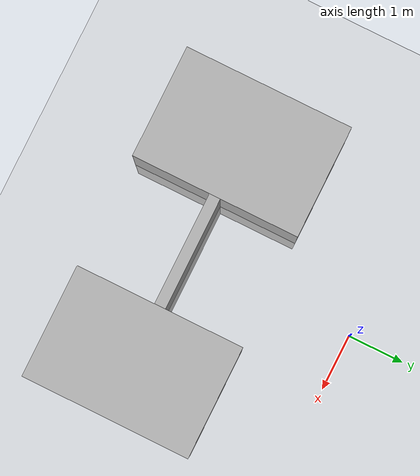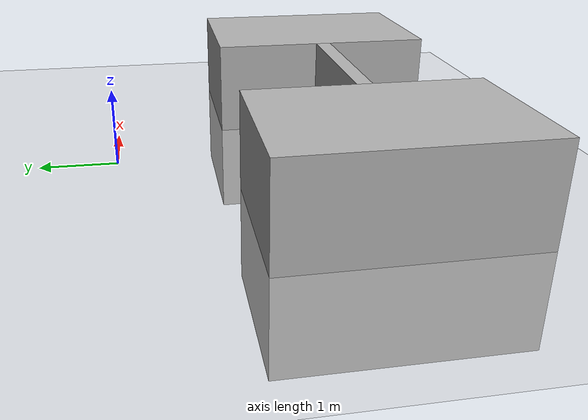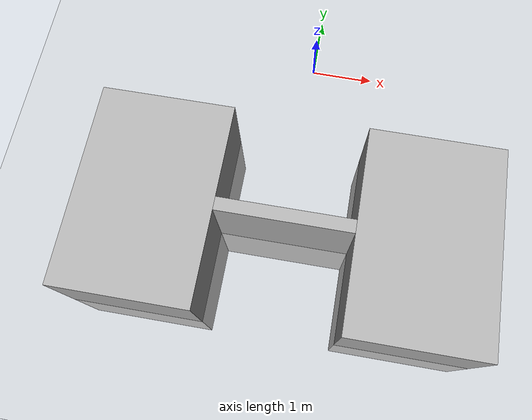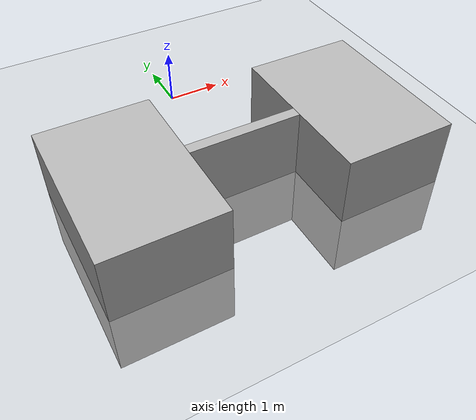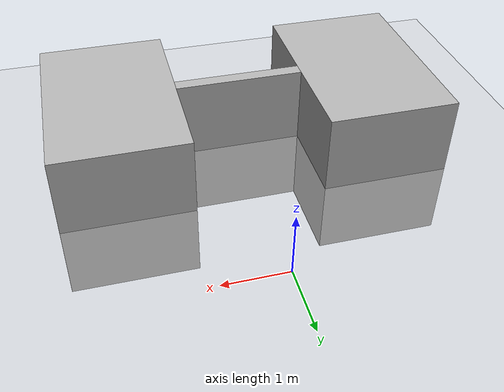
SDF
<?xml version="1.0" ?>
<sdf version='1.8'>
  <world name='test'>

    <physics name='1ms' type='ignored'>
      <max_step_size>0.001</max_step_size>
      <real_time_factor>1</real_time_factor>
    </physics>

    <plugin
        filename="ignition-gazebo-physics-system"
        name="ignition::gazebo::systems::Physics">
    </plugin>
    <plugin filename="ignition-gazebo-imu-system"
            name="ignition::gazebo::systems::Imu">
    </plugin>
    <plugin
        filename="ignition-gazebo-user-commands-system"
        name="ignition::gazebo::systems::UserCommands">
    </plugin>
    <plugin
        filename="ignition-gazebo-scene-broadcaster-system"
        name="ignition::gazebo::systems::SceneBroadcaster">
    </plugin>
    <plugin
        filename="ignition-gazebo-sensors-system"
        name="ignition::gazebo::systems::Sensors">
        <render_engine>ogre2</render_engine>
    </plugin>
    <plugin
        filename="ignition-gazebo-contact-system"
        name="ignition::gazebo::systems::Contact">
    </plugin>
    <gui>
      <plugin name='3D View' filename='MinimalScene'>
          <ignition-gui>
            <title>3D View</title>
            <property type='bool' key='showTitleBar'>false</property>
            <property type='string' key='state'>docked</property>
          </ignition-gui>
          <engine>ogre2</engine>
          <scene>scene</scene>
          <ambient_light>0.4 0.4 0.4</ambient_light>
          <background_color>0.8 0.8 0.8</background_color>
          <camera_pose>-6 0 6 0 0.5 0</camera_pose>
        </plugin>
        <plugin name='Entity context menu' filename='EntityContextMenuPlugin'>
          <ignition-gui>
            <property key='state' type='string'>floating</property>
            <property key='width' type='double'>5</property>
            <property key='height' type='double'>5</property>
            <property key='showTitleBar' type='bool'>false</property>
          </ignition-gui>
        </plugin>
        <plugin name='Interactive view control' filename='InteractiveViewControl'>
          <ignition-gui>
            <property key='resizable' type='bool'>false</property>
            <property key='width' type='double'>5</property>
            <property key='height' type='double'>5</property>
            <property key='state' type='string'>floating</property>
            <property key='showTitleBar' type='bool'>false</property>
          </ignition-gui>
        </plugin>
        <plugin name='Scene Manager' filename='GzSceneManager'>
          <ignition-gui>
            <property key='resizable' type='bool'>false</property>
            <property key='width' type='double'>5</property>
            <property key='height' type='double'>5</property>
            <property key='state' type='string'>floating</property>
            <property key='showTitleBar' type='bool'>false</property>
          </ignition-gui>
        </plugin>
        <plugin name='Component inspector' filename='ComponentInspector'>
        <ignition-gui>
          <property type='string' key='state'>docked</property>
        </ignition-gui>
      </plugin>
      <plugin name='Entity tree' filename='EntityTree'>
        <ignition-gui>
          <property type='string' key='state'>docked</property>
        </ignition-gui>
      </plugin>
      <plugin name='Grid config' filename='GridConfig'>
        <ignition-gui>
          <title>Grid Config</title>
        </ignition-gui>
        <insert>
          <horizontal_cell_count>50</horizontal_cell_count>
        </insert>
      </plugin>
    </gui>

    <model name='ground_plane'>
      <static>true</static>
      <link name='link'>
        <collision name='collision'>
          <geometry>
            <plane>
              <normal>0 0 1</normal>
              <size>100 100</size>
            </plane>
          </geometry>
          <surface>
            <friction>
              <ode/>
            </friction>
            <bounce/>
            <contact/>
          </surface>
        </collision>
        <visual name='visual'>
          <geometry>
            <plane>
              <normal>0 0 1</normal>
              <size>100 100</size>
            </plane>

          </geometry>
          <material>
            <ambient>0.8 0.8 0.8 1</ambient>
            <diffuse>0.8 0.8 0.8 1</diffuse>
            <specular>0.8 0.8 0.8 1</specular>
          </material>
        </visual>
        <pose>0 0 0 0 -0 0</pose>
        <inertial>
          <pose>0 0 0 0 -0 0</pose>
          <mass>1</mass>
          <inertia>
            <ixx>1</ixx>
            <ixy>0</ixy>
            <ixz>0</ixz>
            <iyy>1</iyy>
            <iyz>0</iyz>
            <izz>1</izz>
          </inertia>
        </inertial>
        <enable_wind>false</enable_wind>
      </link>
      <pose>0 0 0 0 -0 0</pose>
      <self_collide>false</self_collide>
    </model>
    <model name="left_wall">
        <static>true</static>
        <pose>2 -3 0 0 0 0</pose>
        <link name="left_wall_link">
          <collision name="left_wall_collision">
            <geometry>
              <box>
                <size>2 3 2.5</size>
              </box>
            </geometry>
            <surface>
              <contact>
                <collide_without_contact>true</collide_without_contact>
              </contact>
            </surface>
          </collision>
          <visual name="left_wall_visual">
            <geometry>
              <box>
                <size>2 3 2.5</size>
              </box>
            </geometry>
            <material>
              <ambient>0.7 0.7 0.7 1</ambient>
              <diffuse>0.7 0.7 0.7 1</diffuse>
              <specular>0.1 0.1 0.1 1</specular>
            </material>
          </visual>
        </link>
    </model>
    <model name="right_wall">
        <static>true</static>
        <pose>-2 -3 0 0 0 0</pose>
        <link name="right_wall_link">
          <collision name="right_wall_collision">
            <geometry>
              <box>
                <size>2 3 2.5</size>
              </box>
            </geometry>
            <surface>
              <contact>
                <collide_without_contact>true</collide_without_contact>
              </contact>
            </surface>
          </collision>
          <visual name="right_wall_visual">
            <geometry>
              <box>
                <size>2 3 2.5</size>
              </box>
            </geometry>
            <material>
              <ambient>0.7 0.7 0.7 1</ambient>
              <diffuse>0.7 0.7 0.7 1</diffuse>
              <specular>0.1 0.1 0.1 1</specular>
            </material>
          </visual>
        </link>
    </model>
    <model name="back_wall">
        <static>true</static>
        <pose>0 -3 0 0 0 0</pose>
        <link name="back_wall_link">
          <collision name="back_wall_collision">
            <geometry>
              <box>
                <size>2 0.2 2.5</size>
              </box>
            </geometry>
            <surface>
              <contact>
                <collide_without_contact>true</collide_without_contact>
              </contact>
            </surface>
          </collision>
          <visual name="back_wall_visual">
            <geometry>
              <box>
                <size>2 0.2 2.5</size>
              </box>
            </geometry>
            <material>
              <ambient>0.7 0.7 0.7 1</ambient>
              <diffuse>0.7 0.7 0.7 1</diffuse>
              <specular>0.1 0.1 0.1 1</specular>
            </material>
          </visual>
        </link>
    </model>

    <light name='sun' type='directional'>
      <pose>0 0 10 0 -0 0</pose>
      <cast_shadows>true</cast_shadows>
      <intensity>1</intensity>
      <direction>-0.5 0.1 -0.9</direction>
      <diffuse>0.8 0.8 0.8 1</diffuse>
      <specular>0.2 0.2 0.2 1</specular>
      <attenuation>
        <range>1000</range>
        <linear>0.01</linear>
        <constant>0.90000000000000002</constant>
        <quadratic>0.001</quadratic>
      </attenuation>
      <spot>
        <inner_angle>0</inner_angle>
        <outer_angle>0</outer_angle>
        <falloff>0</falloff>
      </spot>
    </light>

  </world>
</sdf>
